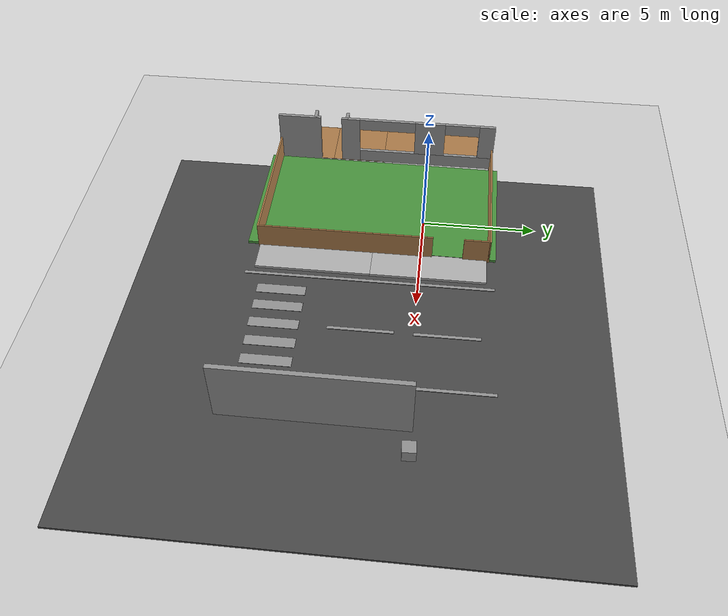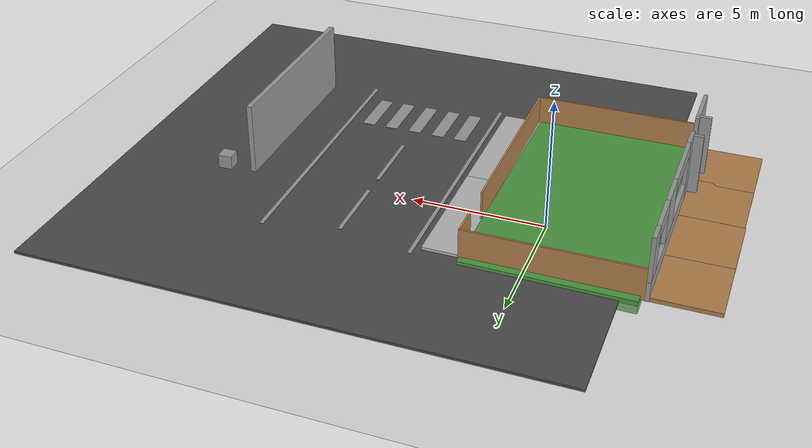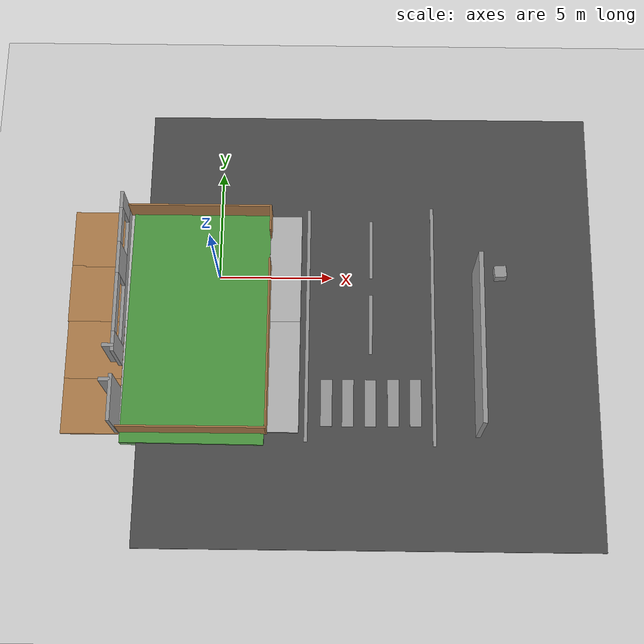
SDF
<sdf version="1.6">
 <world name="default">
  <model name="ground_plane">
   <static>1</static>
   <link name="link">
    <collision name="collision">
     <geometry><plane><normal>0 0 1</normal><size>100 100</size></plane></geometry>
     <surface>
      <contact><collide_bitmask>65535</collide_bitmask></contact>
      <friction><ode><mu>100</mu><mu2>50</mu2></ode></friction>
     </surface>
    </collision>
    <visual name="visual">
     <cast_shadows>0</cast_shadows>
     <geometry><plane><normal>0 0 1</normal><size>100 100</size></plane></geometry>
     <material>
      <script><uri>file://media/materials/scripts/gazebo.material</uri><name>Gazebo/Grey</name></script>
     </material>
    </visual>
   </link>
  </model>
  <model name="grey_wall_1">
   <static>1</static>
   <link name="link">
    <pose>0 0 1.4 0 -0 0</pose>
    <collision name="collision"><geometry><box><size>7.5 0.2 2.8</size></box></geometry></collision>
    <visual name="visual">
     <cast_shadows>0</cast_shadows>
     <geometry><box><size>7.5 0.2 2.8</size></box></geometry>
     <material>
      <script>
       <uri>model://grey_wall/materials/scripts</uri>
       <uri>model://grey_wall/materials/textures</uri>
       <name>vrc/grey_wall</name>
      </script>
     </material>
    </visual>
   </link>
   <pose>11.3606 -3.46174 0 0 -0 1.56876</pose>
  </model>
  <model name="mud_box">
   <static>1</static>
   <link name="link">
    <collision name="collision"><geometry><box><size>8 10 0.2</size></box></geometry></collision>
    <visual name="visual_1">
     <pose>-2 2.5 0 0 -0 0</pose>
     <cast_shadows>0</cast_shadows>
     <geometry><box><size>4 5 0.2</size></box></geometry>
     <material>
      <script>
       <uri>model://mud_box/materials/scripts</uri>
       <uri>model://mud_box/materials/textures</uri>
       <name>vrc/mud</name>
      </script>
     </material>
    </visual>
    <visual name="visual_2">
     <pose>2 2.5 0 0 -0 0</pose>
     <cast_shadows>0</cast_shadows>
     <geometry><box><size>4 5 0.2</size></box></geometry>
     <material>
      <script>
       <uri>model://mud_box/materials/scripts</uri>
       <uri>model://mud_box/materials/textures</uri>
       <name>vrc/mud</name>
      </script>
     </material>
    </visual>
    <visual name="visual_3">
     <pose>2 -2.5 0 0 -0 0</pose>
     <cast_shadows>0</cast_shadows>
     <geometry><box><size>4 5 0.2</size></box></geometry>
     <material>
      <script>
       <uri>model://mud_box/materials/scripts</uri>
       <uri>model://mud_box/materials/textures</uri>
       <name>vrc/mud</name>
      </script>
     </material>
    </visual>
    <visual name="visual_4">
     <pose>-2 -2.5 0 0 -0 0</pose>
     <cast_shadows>0</cast_shadows>
     <geometry><box><size>4 5 0.2</size></box></geometry>
     <material>
      <script>
       <uri>model://mud_box/materials/scripts</uri>
       <uri>model://mud_box/materials/textures</uri>
       <name>vrc/mud</name>
      </script>
     </material>
    </visual>
   </link>
   <pose>-0.378067 -2.09967 0.03638 0 -0 0</pose>
  </model>
  <model name="unit_box_0_clone_22_clone_14">
   <pose>12.4815 0.207746 0.299744 -0.001328 -0.020969 0.063248</pose>
   <link name="link">
    <inertial>
     <mass>1</mass>
     <inertia>
      <ixx>0.166667</ixx>
      <ixy>0</ixy>
      <ixz>0</ixz>
      <iyy>0.166667</iyy>
      <iyz>0</iyz>
      <izz>0.166667</izz>
     </inertia>
    </inertial>
    <collision name="collision">
     <geometry><box><size>0.530101 0.530101 0.530101</size></box></geometry>
    </collision>
    <visual name="visual">
     <geometry><box><size>0.530101 0.530101 0.530101</size></box></geometry>
     <material>
      <script><name>Gazebo/Grey</name><uri>file://media/materials/scripts/gazebo.material</uri></script>
     </material>
    </visual>
   </link>
  </model>
  <model name="world_frame">
   <link name="Wall_100">
    <pose>-15.3271 -4.993 0 0 -0 0</pose>
    <visual name="Wall_100_Visual">
     <pose>0 0 0.625 0 -0 0</pose>
     <geometry><box><size>6.495 0.07 1.25</size></box></geometry>
     <material>
      <script><uri>file://media/materials/scripts/gazebo.material</uri><name>Gazebo/Wood</name></script>
      <ambient>1 1 1 1</ambient>
      <shader type="pixel"/>
      <diffuse>1 1 1 1</diffuse>
      <specular>0.2 0.2 0.2 1</specular>
      <emissive>0 0 0 1</emissive>
     </material>
     <meta><layer>0</layer></meta>
    </visual>
    <collision name="Wall_100_Collision">
     <pose>0 0 0.625 0 -0 0</pose>
     <geometry><box><size>6.495 0.07 1.25</size></box></geometry>
     <surface>
      <friction>
       <ode><mu>1</mu><mu2>1</mu2><fdir1>0 0 0</fdir1><slip1>0</slip1><slip2>0</slip2></ode>
       <torsional>
        <coefficient>1</coefficient>
        <patch_radius>0</patch_radius>
        <surface_radius>0</surface_radius>
        <use_patch_radius>1</use_patch_radius>
        <ode><slip>0</slip></ode>
       </torsional>
      </friction>
      <bounce><restitution_coefficient>0</restitution_coefficient><threshold>1e+06</threshold></bounce>
      <contact>
       <collide_without_contact>0</collide_without_contact>
       <collide_without_contact_bitmask>1</collide_without_contact_bitmask>
       <collide_bitmask>1</collide_bitmask>
       <ode>
        <soft_cfm>0</soft_cfm>
        <soft_erp>0.2</soft_erp>
        <kp>1e+13</kp>
        <kd>1</kd>
        <max_vel>0.01</max_vel>
        <min_depth>0</min_depth>
       </ode>
       <bullet>
        <split_impulse>1</split_impulse>
        <split_impulse_penetration_threshold>-0.01</split_impulse_penetration_threshold>
        <soft_cfm>0</soft_cfm>
        <soft_erp>0.2</soft_erp>
        <kp>1e+13</kp>
        <kd>1</kd>
       </bullet>
      </contact>
     </surface>
    </collision>
   </link>
   <link name="Wall_101">
    <pose>-12.1146 -1.193 0 0 -0 1.5708</pose>
    <visual name="Wall_101_Visual">
     <pose>0 0 0.625 0 -0 0</pose>
     <geometry><box><size>7.6704 0.07 1.25</size></box></geometry>
     <material>
      <script><uri>file://media/materials/scripts/gazebo.material</uri><name>Gazebo/Wood</name></script>
      <ambient>1 1 1 1</ambient>
      <shader type="pixel"/>
      <diffuse>1 1 1 1</diffuse>
      <specular>0.2 0.2 0.2 1</specular>
      <emissive>0 0 0 1</emissive>
     </material>
     <meta><layer>0</layer></meta>
    </visual>
    <collision name="Wall_101_Collision">
     <pose>0 0 0.625 0 -0 0</pose>
     <geometry><box><size>7.6704 0.07 1.25</size></box></geometry>
     <surface>
      <friction>
       <ode><mu>1</mu><mu2>1</mu2><fdir1>0 0 0</fdir1><slip1>0</slip1><slip2>0</slip2></ode>
       <torsional>
        <coefficient>1</coefficient>
        <patch_radius>0</patch_radius>
        <surface_radius>0</surface_radius>
        <use_patch_radius>1</use_patch_radius>
        <ode><slip>0</slip></ode>
       </torsional>
      </friction>
      <bounce><restitution_coefficient>0</restitution_coefficient><threshold>1e+06</threshold></bounce>
      <contact>
       <collide_without_contact>0</collide_without_contact>
       <collide_without_contact_bitmask>1</collide_without_contact_bitmask>
       <collide_bitmask>1</collide_bitmask>
       <ode>
        <soft_cfm>0</soft_cfm>
        <soft_erp>0.2</soft_erp>
        <kp>1e+13</kp>
        <kd>1</kd>
        <max_vel>0.01</max_vel>
        <min_depth>0</min_depth>
       </ode>
       <bullet>
        <split_impulse>1</split_impulse>
        <split_impulse_penetration_threshold>-0.01</split_impulse_penetration_threshold>
        <soft_cfm>0</soft_cfm>
        <soft_erp>0.2</soft_erp>
        <kp>1e+13</kp>
        <kd>1</kd>
       </bullet>
      </contact>
     </surface>
    </collision>
   </link>
   <link name="Wall_131">
    <pose>-18.5396 -4.068 0 0 -0 1.5708</pose>
    <visual name="Wall_131_Visual">
     <pose>0 0 1.25 0 -0 0</pose>
     <geometry><box><size>2 0.15 2.5</size></box></geometry>
     <material>
      <script><uri>file://media/materials/scripts/gazebo.material</uri><name>Gazebo/Grey</name></script>
      <ambient>1 1 1 1</ambient>
      <shader type="pixel"/>
      <diffuse>0.7 0.7 0.7 1</diffuse>
      <specular>0.01 0.01 0.01 1</specular>
      <emissive>0 0 0 1</emissive>
     </material>
     <meta><layer>0</layer></meta>
    </visual>
    <collision name="Wall_131_Collision">
     <pose>0 0 1.25 0 -0 0</pose>
     <geometry><box><size>2 0.15 2.5</size></box></geometry>
     <surface>
      <friction>
       <ode><mu>1</mu><mu2>1</mu2><fdir1>0 0 0</fdir1><slip1>0</slip1><slip2>0</slip2></ode>
       <torsional>
        <coefficient>1</coefficient>
        <patch_radius>0</patch_radius>
        <surface_radius>0</surface_radius>
        <use_patch_radius>1</use_patch_radius>
        <ode><slip>0</slip></ode>
       </torsional>
      </friction>
      <bounce><restitution_coefficient>0</restitution_coefficient><threshold>1e+06</threshold></bounce>
      <contact>
       <collide_without_contact>0</collide_without_contact>
       <collide_without_contact_bitmask>1</collide_without_contact_bitmask>
       <collide_bitmask>1</collide_bitmask>
       <ode>
        <soft_cfm>0</soft_cfm>
        <soft_erp>0.2</soft_erp>
        <kp>1e+13</kp>
        <kd>1</kd>
        <max_vel>0.01</max_vel>
        <min_depth>0</min_depth>
       </ode>
       <bullet>
        <split_impulse>1</split_impulse>
        <split_impulse_penetration_threshold>-0.01</split_impulse_penetration_threshold>
        <soft_cfm>0</soft_cfm>
        <soft_erp>0.2</soft_erp>
        <kp>1e+13</kp>
        <kd>1</kd>
       </bullet>
      </contact>
     </surface>
    </collision>
   </link>
   <link name="Wall_136">
    <pose>-18.5517 1.54493 0 0 -0 1.5708</pose>
    <visual name="Wall_136_Visual_0">
     <pose>-3.1871 0 1.25 0 -0 0</pose>
     <geometry><box><size>0.875792 0.15 2.5</size></box></geometry>
     <material>
      <script><uri>file://media/materials/scripts/gazebo.material</uri><name>Gazebo/Grey</name></script>
      <ambient>1 1 1 1</ambient>
      <shader type="pixel"/>
      <diffuse>0.7 0.7 0.7 1</diffuse>
      <specular>0.01 0.01 0.01 1</specular>
      <emissive>0 0 0 1</emissive>
     </material>
     <meta><layer>0</layer></meta>
    </visual>
    <visual name="Wall_136_Visual_1">
     <pose>0.437896 0 0.375 0 -0 0</pose>
     <geometry><box><size>6.37421 0.15 0.75</size></box></geometry>
     <material>
      <script><uri>file://media/materials/scripts/gazebo.material</uri><name>Gazebo/Grey</name></script>
      <ambient>1 1 1 1</ambient>
      <shader type="pixel"/>
      <diffuse>0.7 0.7 0.7 1</diffuse>
      <specular>0.01 0.01 0.01 1</specular>
      <emissive>0 0 0 1</emissive>
     </material>
     <meta><layer>0</layer></meta>
    </visual>
    <visual name="Wall_136_Visual_2">
     <pose>0.578795 0 1.625 0 -0 0</pose>
     <geometry><box><size>1.40688 0.15 1.75</size></box></geometry>
     <material>
      <script><uri>file://media/materials/scripts/gazebo.material</uri><name>Gazebo/Grey</name></script>
      <ambient>1 1 1 1</ambient>
      <shader type="pixel"/>
      <diffuse>0.7 0.7 0.7 1</diffuse>
      <specular>0.01 0.01 0.01 1</specular>
      <emissive>0 0 0 1</emissive>
     </material>
     <meta><layer>0</layer></meta>
    </visual>
    <visual name="Wall_136_Visual_3">
     <pose>3.25362 0 1.625 0 -0 0</pose>
     <geometry><box><size>0.742767 0.15 1.75</size></box></geometry>
     <material>
      <script><uri>file://media/materials/scripts/gazebo.material</uri><name>Gazebo/Grey</name></script>
      <ambient>1 1 1 1</ambient>
      <shader type="pixel"/>
      <diffuse>0.7 0.7 0.7 1</diffuse>
      <specular>0.01 0.01 0.01 1</specular>
      <emissive>0 0 0 1</emissive>
     </material>
     <meta><layer>0</layer></meta>
    </visual>
    <visual name="Wall_136_Visual_4">
     <pose>-1.43693 0 2.225 0 -0 0</pose>
     <geometry><box><size>2.62457 0.15 0.55</size></box></geometry>
     <material>
      <script><uri>file://media/materials/scripts/gazebo.material</uri><name>Gazebo/Grey</name></script>
      <ambient>1 1 1 1</ambient>
      <shader type="pixel"/>
      <diffuse>0.7 0.7 0.7 1</diffuse>
      <specular>0.01 0.01 0.01 1</specular>
      <emissive>0 0 0 1</emissive>
     </material>
     <meta><layer>0</layer></meta>
    </visual>
    <visual name="Wall_136_Visual_5">
     <pose>2.08223 0 2.225 0 -0 0</pose>
     <geometry><box><size>1.6 0.15 0.55</size></box></geometry>
     <material>
      <script><uri>file://media/materials/scripts/gazebo.material</uri><name>Gazebo/Grey</name></script>
      <ambient>1 1 1 1</ambient>
      <shader type="pixel"/>
      <diffuse>0.7 0.7 0.7 1</diffuse>
      <specular>0.01 0.01 0.01 1</specular>
      <emissive>0 0 0 1</emissive>
     </material>
     <meta><layer>0</layer></meta>
    </visual>
    <collision name="Wall_136_Collision_0">
     <pose>-3.1871 0 1.25 0 -0 0</pose>
     <geometry><box><size>0.875792 0.15 2.5</size></box></geometry>
     <surface>
      <friction>
       <ode><mu>1</mu><mu2>1</mu2><fdir1>0 0 0</fdir1><slip1>0</slip1><slip2>0</slip2></ode>
       <torsional>
        <coefficient>1</coefficient>
        <patch_radius>0</patch_radius>
        <surface_radius>0</surface_radius>
        <use_patch_radius>1</use_patch_radius>
        <ode><slip>0</slip></ode>
       </torsional>
      </friction>
      <bounce><restitution_coefficient>0</restitution_coefficient><threshold>1e+06</threshold></bounce>
      <contact>
       <collide_without_contact>0</collide_without_contact>
       <collide_without_contact_bitmask>1</collide_without_contact_bitmask>
       <collide_bitmask>1</collide_bitmask>
       <ode>
        <soft_cfm>0</soft_cfm>
        <soft_erp>0.2</soft_erp>
        <kp>1e+13</kp>
        <kd>1</kd>
        <max_vel>0.01</max_vel>
        <min_depth>0</min_depth>
       </ode>
       <bullet>
        <split_impulse>1</split_impulse>
        <split_impulse_penetration_threshold>-0.01</split_impulse_penetration_threshold>
        <soft_cfm>0</soft_cfm>
        <soft_erp>0.2</soft_erp>
        <kp>1e+13</kp>
        <kd>1</kd>
       </bullet>
      </contact>
     </surface>
    </collision>
    <collision name="Wall_136_Collision_1">
     <pose>0.437896 0 0.375 0 -0 0</pose>
     <geometry><box><size>6.37421 0.15 0.75</size></box></geometry>
     <surface>
      <friction>
       <ode><mu>1</mu><mu2>1</mu2><fdir1>0 0 0</fdir1><slip1>0</slip1><slip2>0</slip2></ode>
       <torsional>
        <coefficient>1</coefficient>
        <patch_radius>0</patch_radius>
        <surface_radius>0</surface_radius>
        <use_patch_radius>1</use_patch_radius>
        <ode><slip>0</slip></ode>
       </torsional>
      </friction>
      <bounce><restitution_coefficient>0</restitution_coefficient><threshold>1e+06</threshold></bounce>
      <contact>
       <collide_without_contact>0</collide_without_contact>
       <collide_without_contact_bitmask>1</collide_without_contact_bitmask>
       <collide_bitmask>1</collide_bitmask>
       <ode>
        <soft_cfm>0</soft_cfm>
        <soft_erp>0.2</soft_erp>
        <kp>1e+13</kp>
        <kd>1</kd>
        <max_vel>0.01</max_vel>
        <min_depth>0</min_depth>
       </ode>
       <bullet>
        <split_impulse>1</split_impulse>
        <split_impulse_penetration_threshold>-0.01</split_impulse_penetration_threshold>
        <soft_cfm>0</soft_cfm>
        <soft_erp>0.2</soft_erp>
        <kp>1e+13</kp>
        <kd>1</kd>
       </bullet>
      </contact>
     </surface>
    </collision>
    <collision name="Wall_136_Collision_2">
     <pose>0.578795 0 1.625 0 -0 0</pose>
     <geometry><box><size>1.40688 0.15 1.75</size></box></geometry>
     <surface>
      <friction>
       <ode><mu>1</mu><mu2>1</mu2><fdir1>0 0 0</fdir1><slip1>0</slip1><slip2>0</slip2></ode>
       <torsional>
        <coefficient>1</coefficient>
        <patch_radius>0</patch_radius>
        <surface_radius>0</surface_radius>
        <use_patch_radius>1</use_patch_radius>
        <ode><slip>0</slip></ode>
       </torsional>
      </friction>
      <bounce><restitution_coefficient>0</restitution_coefficient><threshold>1e+06</threshold></bounce>
      <contact>
       <collide_without_contact>0</collide_without_contact>
       <collide_without_contact_bitmask>1</collide_without_contact_bitmask>
       <collide_bitmask>1</collide_bitmask>
       <ode>
        <soft_cfm>0</soft_cfm>
        <soft_erp>0.2</soft_erp>
        <kp>1e+13</kp>
        <kd>1</kd>
        <max_vel>0.01</max_vel>
        <min_depth>0</min_depth>
       </ode>
       <bullet>
        <split_impulse>1</split_impulse>
        <split_impulse_penetration_threshold>-0.01</split_impulse_penetration_threshold>
        <soft_cfm>0</soft_cfm>
        <soft_erp>0.2</soft_erp>
        <kp>1e+13</kp>
        <kd>1</kd>
       </bullet>
      </contact>
     </surface>
    </collision>
    <collision name="Wall_136_Collision_4">
     <pose>-1.43693 0 2.225 0 -0 0</pose>
     <geometry><box><size>2.62457 0.15 0.55</size></box></geometry>
     <surface>
      <friction>
       <ode><mu>1</mu><mu2>1</mu2><fdir1>0 0 0</fdir1><slip1>0</slip1><slip2>0</slip2></ode>
       <torsional>
        <coefficient>1</coefficient>
        <patch_radius>0</patch_radius>
        <surface_radius>0</surface_radius>
        <use_patch_radius>1</use_patch_radius>
        <ode><slip>0</slip></ode>
       </torsional>
      </friction>
      <bounce><restitution_coefficient>0</restitution_coefficient><threshold>1e+06</threshold></bounce>
      <contact>
       <collide_without_contact>0</collide_without_contact>
       <collide_without_contact_bitmask>1</collide_without_contact_bitmask>
       <collide_bitmask>1</collide_bitmask>
       <ode>
        <soft_cfm>0</soft_cfm>
        <soft_erp>0.2</soft_erp>
        <kp>1e+13</kp>
        <kd>1</kd>
        <max_vel>0.01</max_vel>
        <min_depth>0</min_depth>
       </ode>
       <bullet>
        <split_impulse>1</split_impulse>
        <split_impulse_penetration_threshold>-0.01</split_impulse_penetration_threshold>
        <soft_cfm>0</soft_cfm>
        <soft_erp>0.2</soft_erp>
        <kp>1e+13</kp>
        <kd>1</kd>
       </bullet>
      </contact>
     </surface>
    </collision>
    <collision name="Wall_136_Collision_3">
     <pose>3.25362 0 1.625 0 -0 0</pose>
     <geometry><box><size>0.742767 0.15 1.75</size></box></geometry>
     <surface>
      <friction>
       <ode><mu>1</mu><mu2>1</mu2><fdir1>0 0 0</fdir1><slip1>0</slip1><slip2>0</slip2></ode>
       <torsional>
        <coefficient>1</coefficient>
        <patch_radius>0</patch_radius>
        <surface_radius>0</surface_radius>
        <use_patch_radius>1</use_patch_radius>
        <ode><slip>0</slip></ode>
       </torsional>
      </friction>
      <bounce><restitution_coefficient>0</restitution_coefficient><threshold>1e+06</threshold></bounce>
      <contact>
       <collide_without_contact>0</collide_without_contact>
       <collide_without_contact_bitmask>1</collide_without_contact_bitmask>
       <collide_bitmask>1</collide_bitmask>
       <ode>
        <soft_cfm>0</soft_cfm>
        <soft_erp>0.2</soft_erp>
        <kp>1e+13</kp>
        <kd>1</kd>
        <max_vel>0.01</max_vel>
        <min_depth>0</min_depth>
       </ode>
       <bullet>
        <split_impulse>1</split_impulse>
        <split_impulse_penetration_threshold>-0.01</split_impulse_penetration_threshold>
        <soft_cfm>0</soft_cfm>
        <soft_erp>0.2</soft_erp>
        <kp>1e+13</kp>
        <kd>1</kd>
       </bullet>
      </contact>
     </surface>
    </collision>
    <collision name="Wall_136_Collision_5">
     <pose>2.08223 0 2.225 0 -0 0</pose>
     <geometry><box><size>1.6 0.15 0.55</size></box></geometry>
     <surface>
      <friction>
       <ode><mu>1</mu><mu2>1</mu2><fdir1>0 0 0</fdir1><slip1>0</slip1><slip2>0</slip2></ode>
       <torsional>
        <coefficient>1</coefficient>
        <patch_radius>0</patch_radius>
        <surface_radius>0</surface_radius>
        <use_patch_radius>1</use_patch_radius>
        <ode><slip>0</slip></ode>
       </torsional>
      </friction>
      <bounce><restitution_coefficient>0</restitution_coefficient><threshold>1e+06</threshold></bounce>
      <contact>
       <collide_without_contact>0</collide_without_contact>
       <collide_without_contact_bitmask>1</collide_without_contact_bitmask>
       <collide_bitmask>1</collide_bitmask>
       <ode>
        <soft_cfm>0</soft_cfm>
        <soft_erp>0.2</soft_erp>
        <kp>1e+13</kp>
        <kd>1</kd>
        <max_vel>0.01</max_vel>
        <min_depth>0</min_depth>
       </ode>
       <bullet>
        <split_impulse>1</split_impulse>
        <split_impulse_penetration_threshold>-0.01</split_impulse_penetration_threshold>
        <soft_cfm>0</soft_cfm>
        <soft_erp>0.2</soft_erp>
        <kp>1e+13</kp>
        <kd>1</kd>
       </bullet>
      </contact>
     </surface>
    </collision>
   </link>
   <link name="Wall_159">
    <pose>-18.7934 -3.30493 0 0 -0 3.14159</pose>
    <visual name="Wall_159_Visual">
     <pose>0 0 1.25 0 -0 0</pose>
     <geometry><box><size>0.5 0.15 2.5</size></box></geometry>
     <material>
      <script><uri>file://media/materials/scripts/gazebo.material</uri><name>Gazebo/Grey</name></script>
      <ambient>1 1 1 1</ambient>
      <shader type="pixel"/>
      <diffuse>0.7 0.7 0.7 1</diffuse>
      <specular>0.01 0.01 0.01 1</specular>
      <emissive>0 0 0 1</emissive>
     </material>
     <meta><layer>0</layer></meta>
    </visual>
    <collision name="Wall_159_Collision">
     <pose>0 0 1.25 0 -0 0</pose>
     <geometry><box><size>0.5 0.15 2.5</size></box></geometry>
     <surface>
      <friction>
       <ode><mu>1</mu><mu2>1</mu2><fdir1>0 0 0</fdir1><slip1>0</slip1><slip2>0</slip2></ode>
       <torsional>
        <coefficient>1</coefficient>
        <patch_radius>0</patch_radius>
        <surface_radius>0</surface_radius>
        <use_patch_radius>1</use_patch_radius>
        <ode><slip>0</slip></ode>
       </torsional>
      </friction>
      <bounce><restitution_coefficient>0</restitution_coefficient><threshold>1e+06</threshold></bounce>
      <contact>
       <collide_without_contact>0</collide_without_contact>
       <collide_without_contact_bitmask>1</collide_without_contact_bitmask>
       <collide_bitmask>1</collide_bitmask>
       <ode>
        <soft_cfm>0</soft_cfm>
        <soft_erp>0.2</soft_erp>
        <kp>1e+13</kp>
        <kd>1</kd>
        <max_vel>0.01</max_vel>
        <min_depth>0</min_depth>
       </ode>
       <bullet>
        <split_impulse>1</split_impulse>
        <split_impulse_penetration_threshold>-0.01</split_impulse_penetration_threshold>
        <soft_cfm>0</soft_cfm>
        <soft_erp>0.2</soft_erp>
        <kp>1e+13</kp>
        <kd>1</kd>
       </bullet>
      </contact>
     </surface>
    </collision>
   </link>
   <link name="Wall_176">
    <pose>-18.7419 -1.81759 0 0 -0 3.14159</pose>
    <visual name="Wall_176_Visual">
     <pose>0 0 1.25 0 -0 0</pose>
     <geometry><box><size>0.5 0.15 2.5</size></box></geometry>
     <material>
      <script><uri>file://media/materials/scripts/gazebo.material</uri><name>Gazebo/Grey</name></script>
      <ambient>1 1 1 1</ambient>
      <shader type="pixel"/>
      <diffuse>0.7 0.7 0.7 1</diffuse>
      <specular>0.01 0.01 0.01 1</specular>
      <emissive>0 0 0 1</emissive>
     </material>
     <meta><layer>0</layer></meta>
    </visual>
    <collision name="Wall_176_Collision">
     <pose>0 0 1.25 0 -0 0</pose>
     <geometry><box><size>0.5 0.15 2.5</size></box></geometry>
     <surface>
      <friction>
       <ode><mu>1</mu><mu2>1</mu2><fdir1>0 0 0</fdir1><slip1>0</slip1><slip2>0</slip2></ode>
       <torsional>
        <coefficient>1</coefficient>
        <patch_radius>0</patch_radius>
        <surface_radius>0</surface_radius>
        <use_patch_radius>1</use_patch_radius>
        <ode><slip>0</slip></ode>
       </torsional>
      </friction>
      <bounce><restitution_coefficient>0</restitution_coefficient><threshold>1e+06</threshold></bounce>
      <contact>
       <collide_without_contact>0</collide_without_contact>
       <collide_without_contact_bitmask>1</collide_without_contact_bitmask>
       <collide_bitmask>1</collide_bitmask>
       <ode>
        <soft_cfm>0</soft_cfm>
        <soft_erp>0.2</soft_erp>
        <kp>1e+13</kp>
        <kd>1</kd>
        <max_vel>0.01</max_vel>
        <min_depth>0</min_depth>
       </ode>
       <bullet>
        <split_impulse>1</split_impulse>
        <split_impulse_penetration_threshold>-0.01</split_impulse_penetration_threshold>
        <soft_cfm>0</soft_cfm>
        <soft_erp>0.2</soft_erp>
        <kp>1e+13</kp>
        <kd>1</kd>
       </bullet>
      </contact>
     </surface>
    </collision>
   </link>
   <link name="Wall_215">
    <pose>-9.55135 -3.61132 0 0 -0 1.5708</pose>
    <inertial>
     <mass>1</mass>
     <inertia><ixx>1</ixx><ixy>0</ixy><ixz>0</ixz><iyy>1</iyy><iyz>0</iyz><izz>1</izz></inertia>
    </inertial>
    <visual name="Wall_215_Visual">
     <pose>0 0 0.019 0 -0 0</pose>
     <geometry><box><size>2.1 0.5 0.038</size></box></geometry>
     <material>
      <script><uri>file://media/materials/scripts/gazebo.material</uri><name>Gazebo/Grey</name></script>
      <ambient>1 1 1 1</ambient>
      <shader type="pixel"><normal_map>__default__</normal_map></shader>
      <diffuse>0.7 0.7 0.7 1</diffuse>
      <specular>0.01 0.01 0.01 1</specular>
      <emissive>0 0 0 1</emissive>
     </material>
     <meta><layer>0</layer></meta>
    </visual>
   </link>
   <link name="Wall_217">
    <pose>-7.64015 -3.614 0 0 0 -1.5708</pose>
    <inertial>
     <mass>1</mass>
     <inertia><ixx>1</ixx><ixy>0</ixy><ixz>0</ixz><iyy>1</iyy><iyz>0</iyz><izz>1</izz></inertia>
    </inertial>
    <visual name="Wall_217_Visual">
     <pose>0 0 0.019 0 -0 0</pose>
     <geometry><box><size>2.1 0.5 0.038</size></box></geometry>
     <material>
      <script><uri>file://media/materials/scripts/gazebo.material</uri><name>Gazebo/Grey</name></script>
      <ambient>1 1 1 1</ambient>
      <shader type="pixel"><normal_map>__default__</normal_map></shader>
      <diffuse>0.7 0.7 0.7 1</diffuse>
      <specular>0.01 0.01 0.01 1</specular>
      <emissive>0 0 0 1</emissive>
     </material>
     <meta><layer>0</layer></meta>
    </visual>
   </link>
   <link name="Wall_219">
    <pose>-8.62134 -3.61132 0 0 0 -1.5708</pose>
    <inertial>
     <mass>1</mass>
     <inertia><ixx>1</ixx><ixy>0</ixy><ixz>0</ixz><iyy>1</iyy><iyz>0</iyz><izz>1</izz></inertia>
    </inertial>
    <visual name="Wall_219_Visual">
     <pose>0 0 0.019 0 -0 0</pose>
     <geometry><box><size>2.1 0.5 0.038</size></box></geometry>
     <material>
      <script><uri>file://media/materials/scripts/gazebo.material</uri><name>Gazebo/Grey</name></script>
      <ambient>1 1 1 1</ambient>
      <shader type="pixel"><normal_map>__default__</normal_map></shader>
      <diffuse>0.7 0.7 0.7 1</diffuse>
      <specular>0.01 0.01 0.01 1</specular>
      <emissive>0 0 0 1</emissive>
     </material>
     <meta><layer>0</layer></meta>
    </visual>
   </link>
   <link name="Wall_221">
    <pose>-6.65002 -3.59362 0 0 0 -1.5708</pose>
    <inertial>
     <mass>1</mass>
     <inertia><ixx>1</ixx><ixy>0</ixy><ixz>0</ixz><iyy>1</iyy><iyz>0</iyz><izz>1</izz></inertia>
    </inertial>
    <visual name="Wall_221_Visual">
     <pose>0 0 0.019 0 -0 0</pose>
     <geometry><box><size>2.1 0.5 0.038</size></box></geometry>
     <material>
      <script><uri>file://media/materials/scripts/gazebo.material</uri><name>Gazebo/Grey</name></script>
      <ambient>1 1 1 1</ambient>
      <shader type="pixel"><normal_map>__default__</normal_map></shader>
      <diffuse>0.7 0.7 0.7 1</diffuse>
      <specular>0.01 0.01 0.01 1</specular>
      <emissive>0 0 0 1</emissive>
     </material>
     <meta><layer>0</layer></meta>
    </visual>
   </link>
   <link name="Wall_223">
    <pose>-5.68214 -3.58162 0 0 0 -1.5708</pose>
    <inertial>
     <mass>1</mass>
     <inertia><ixx>1</ixx><ixy>0</ixy><ixz>0</ixz><iyy>1</iyy><iyz>0</iyz><izz>1</izz></inertia>
    </inertial>
    <visual name="Wall_223_Visual">
     <pose>0 0 0.019 0 -0 0</pose>
     <geometry><box><size>2.1 0.5 0.038</size></box></geometry>
     <material>
      <script><uri>file://media/materials/scripts/gazebo.material</uri><name>Gazebo/Grey</name></script>
      <ambient>1 1 1 1</ambient>
      <shader type="pixel"><normal_map>__default__</normal_map></shader>
      <diffuse>0.7 0.7 0.7 1</diffuse>
      <specular>0.01 0.01 0.01 1</specular>
      <emissive>0 0 0 1</emissive>
     </material>
     <meta><layer>0</layer></meta>
    </visual>
   </link>
   <link name="Wall_227">
    <pose>-19.7561 3.83536 0 0 0 -1.5708</pose>
    <visual name="Wall_227_Visual">
     <pose>0 0 0.0775 0 -0 0</pose>
     <geometry><box><size>2.625 2.5 0.155</size></box></geometry>
     <material>
      <script><uri>file://media/materials/scripts/gazebo.material</uri><name>Gazebo/Wood</name></script>
      <ambient>1 1 1 1</ambient>
      <shader type="pixel"/>
      <diffuse>1 1 1 1</diffuse>
      <specular>0.2 0.2 0.2 1</specular>
      <emissive>0 0 0 1</emissive>
     </material>
     <meta><layer>0</layer></meta>
    </visual>
    <collision name="Wall_227_Collision">
     <pose>0 0 0.0775 0 -0 0</pose>
     <geometry><box><size>2.625 2.5 0.155</size></box></geometry>
     <surface>
      <friction>
       <ode><mu>1</mu><mu2>1</mu2><fdir1>0 0 0</fdir1><slip1>0</slip1><slip2>0</slip2></ode>
       <torsional>
        <coefficient>1</coefficient>
        <patch_radius>0</patch_radius>
        <surface_radius>0</surface_radius>
        <use_patch_radius>1</use_patch_radius>
        <ode><slip>0</slip></ode>
       </torsional>
      </friction>
      <bounce><restitution_coefficient>0</restitution_coefficient><threshold>1e+06</threshold></bounce>
      <contact>
       <collide_without_contact>0</collide_without_contact>
       <collide_without_contact_bitmask>1</collide_without_contact_bitmask>
       <collide_bitmask>1</collide_bitmask>
       <ode>
        <soft_cfm>0</soft_cfm>
        <soft_erp>0.2</soft_erp>
        <kp>1e+13</kp>
        <kd>1</kd>
        <max_vel>0.01</max_vel>
        <min_depth>0</min_depth>
       </ode>
       <bullet>
        <split_impulse>1</split_impulse>
        <split_impulse_penetration_threshold>-0.01</split_impulse_penetration_threshold>
        <soft_cfm>0</soft_cfm>
        <soft_erp>0.2</soft_erp>
        <kp>1e+13</kp>
        <kd>1</kd>
       </bullet>
      </contact>
     </surface>
    </collision>
   </link>
   <link name="Wall_231">
    <pose>-19.7567 1.26088 0 0 0 -1.5708</pose>
    <visual name="Wall_231_Visual">
     <pose>0 0 0.0775 0 -0 0</pose>
     <geometry><box><size>2.625 2.5 0.155</size></box></geometry>
     <material>
      <script><uri>file://media/materials/scripts/gazebo.material</uri><name>Gazebo/Wood</name></script>
      <ambient>1 1 1 1</ambient>
      <shader type="pixel"/>
      <diffuse>1 1 1 1</diffuse>
      <specular>0.2 0.2 0.2 1</specular>
      <emissive>0 0 0 1</emissive>
     </material>
     <meta><layer>0</layer></meta>
    </visual>
    <collision name="Wall_231_Collision">
     <pose>0 0 0.0775 0 -0 0</pose>
     <geometry><box><size>2.625 2.5 0.155</size></box></geometry>
     <surface>
      <friction>
       <ode><mu>1</mu><mu2>1</mu2><fdir1>0 0 0</fdir1><slip1>0</slip1><slip2>0</slip2></ode>
       <torsional>
        <coefficient>1</coefficient>
        <patch_radius>0</patch_radius>
        <surface_radius>0</surface_radius>
        <use_patch_radius>1</use_patch_radius>
        <ode><slip>0</slip></ode>
       </torsional>
      </friction>
      <bounce><restitution_coefficient>0</restitution_coefficient><threshold>1e+06</threshold></bounce>
      <contact>
       <collide_without_contact>0</collide_without_contact>
       <collide_without_contact_bitmask>1</collide_without_contact_bitmask>
       <collide_bitmask>1</collide_bitmask>
       <ode>
        <soft_cfm>0</soft_cfm>
        <soft_erp>0.2</soft_erp>
        <kp>1e+13</kp>
        <kd>1</kd>
        <max_vel>0.01</max_vel>
        <min_depth>0</min_depth>
       </ode>
       <bullet>
        <split_impulse>1</split_impulse>
        <split_impulse_penetration_threshold>-0.01</split_impulse_penetration_threshold>
        <soft_cfm>0</soft_cfm>
        <soft_erp>0.2</soft_erp>
        <kp>1e+13</kp>
        <kd>1</kd>
       </bullet>
      </contact>
     </surface>
    </collision>
   </link>
   <link name="Wall_237">
    <pose>-19.7231 -1.35038 0 0 0 -1.5708</pose>
    <visual name="Wall_237_Visual">
     <pose>0 0 0.0775 0 -0 0</pose>
     <geometry><box><size>2.625 2.5 0.155</size></box></geometry>
     <material>
      <script><uri>file://media/materials/scripts/gazebo.material</uri><name>Gazebo/Wood</name></script>
      <ambient>1 1 1 1</ambient>
      <shader type="pixel"/>
      <diffuse>1 1 1 1</diffuse>
      <specular>0.2 0.2 0.2 1</specular>
      <emissive>0 0 0 1</emissive>
     </material>
     <meta><layer>0</layer></meta>
    </visual>
    <collision name="Wall_237_Collision">
     <pose>0 0 0.0775 0 -0 0</pose>
     <geometry><box><size>2.625 2.5 0.155</size></box></geometry>
     <surface>
      <friction>
       <ode><mu>1</mu><mu2>1</mu2><fdir1>0 0 0</fdir1><slip1>0</slip1><slip2>0</slip2></ode>
       <torsional>
        <coefficient>1</coefficient>
        <patch_radius>0</patch_radius>
        <surface_radius>0</surface_radius>
        <use_patch_radius>1</use_patch_radius>
        <ode><slip>0</slip></ode>
       </torsional>
      </friction>
      <bounce><restitution_coefficient>0</restitution_coefficient><threshold>1e+06</threshold></bounce>
      <contact>
       <collide_without_contact>0</collide_without_contact>
       <collide_without_contact_bitmask>1</collide_without_contact_bitmask>
       <collide_bitmask>1</collide_bitmask>
       <ode>
        <soft_cfm>0</soft_cfm>
        <soft_erp>0.2</soft_erp>
        <kp>1e+13</kp>
        <kd>1</kd>
        <max_vel>0.01</max_vel>
        <min_depth>0</min_depth>
       </ode>
       <bullet>
        <split_impulse>1</split_impulse>
        <split_impulse_penetration_threshold>-0.01</split_impulse_penetration_threshold>
        <soft_cfm>0</soft_cfm>
        <soft_erp>0.2</soft_erp>
        <kp>1e+13</kp>
        <kd>1</kd>
       </bullet>
      </contact>
     </surface>
    </collision>
   </link>
   <link name="Wall_239">
    <pose>-19.7211 -3.79343 0 0 0 -1.5708</pose>
    <visual name="Wall_239_Visual">
     <pose>0 0 0.0775 0 -0 0</pose>
     <geometry><box><size>2.625 2.5 0.155</size></box></geometry>
     <material>
      <script><uri>file://media/materials/scripts/gazebo.material</uri><name>Gazebo/Wood</name></script>
      <ambient>1 1 1 1</ambient>
      <shader type="pixel"/>
      <diffuse>1 1 1 1</diffuse>
      <specular>0.2 0.2 0.2 1</specular>
      <emissive>0 0 0 1</emissive>
     </material>
     <meta><layer>0</layer></meta>
    </visual>
    <collision name="Wall_239_Collision">
     <pose>0 0 0.0775 0 -0 0</pose>
     <geometry><box><size>2.625 2.5 0.155</size></box></geometry>
     <surface>
      <friction>
       <ode><mu>1</mu><mu2>1</mu2><fdir1>0 0 0</fdir1><slip1>0</slip1><slip2>0</slip2></ode>
       <torsional>
        <coefficient>1</coefficient>
        <patch_radius>0</patch_radius>
        <surface_radius>0</surface_radius>
        <use_patch_radius>1</use_patch_radius>
        <ode><slip>0</slip></ode>
       </torsional>
      </friction>
      <bounce><restitution_coefficient>0</restitution_coefficient><threshold>1e+06</threshold></bounce>
      <contact>
       <collide_without_contact>0</collide_without_contact>
       <collide_without_contact_bitmask>1</collide_without_contact_bitmask>
       <collide_bitmask>1</collide_bitmask>
       <ode>
        <soft_cfm>0</soft_cfm>
        <soft_erp>0.2</soft_erp>
        <kp>1e+13</kp>
        <kd>1</kd>
        <max_vel>0.01</max_vel>
        <min_depth>0</min_depth>
       </ode>
       <bullet>
        <split_impulse>1</split_impulse>
        <split_impulse_penetration_threshold>-0.01</split_impulse_penetration_threshold>
        <soft_cfm>0</soft_cfm>
        <soft_erp>0.2</soft_erp>
        <kp>1e+13</kp>
        <kd>1</kd>
       </bullet>
      </contact>
     </surface>
    </collision>
   </link>
   <link name="Wall_90">
    <pose>-15.2896 5.107 0 0 -0 0</pose>
    <visual name="Wall_90_Visual">
     <pose>0 0 0.625 0 -0 0</pose>
     <geometry><box><size>6.42 0.07 1.25</size></box></geometry>
     <material>
      <script><uri>file://media/materials/scripts/gazebo.material</uri><name>Gazebo/Wood</name></script>
      <ambient>1 1 1 1</ambient>
      <shader type="pixel"/>
      <diffuse>1 1 1 1</diffuse>
      <specular>0.2 0.2 0.2 1</specular>
      <emissive>0 0 0 1</emissive>
     </material>
     <meta><layer>0</layer></meta>
    </visual>
    <collision name="Wall_90_Collision">
     <pose>0 0 0.625 0 -0 0</pose>
     <geometry><box><size>6.42 0.07 1.25</size></box></geometry>
     <surface>
      <friction>
       <ode><mu>1</mu><mu2>1</mu2><fdir1>0 0 0</fdir1><slip1>0</slip1><slip2>0</slip2></ode>
       <torsional>
        <coefficient>1</coefficient>
        <patch_radius>0</patch_radius>
        <surface_radius>0</surface_radius>
        <use_patch_radius>1</use_patch_radius>
        <ode><slip>0</slip></ode>
       </torsional>
      </friction>
      <bounce><restitution_coefficient>0</restitution_coefficient><threshold>1e+06</threshold></bounce>
      <contact>
       <collide_without_contact>0</collide_without_contact>
       <collide_without_contact_bitmask>1</collide_without_contact_bitmask>
       <collide_bitmask>1</collide_bitmask>
       <ode>
        <soft_cfm>0</soft_cfm>
        <soft_erp>0.2</soft_erp>
        <kp>1e+13</kp>
        <kd>1</kd>
        <max_vel>0.01</max_vel>
        <min_depth>0</min_depth>
       </ode>
       <bullet>
        <split_impulse>1</split_impulse>
        <split_impulse_penetration_threshold>-0.01</split_impulse_penetration_threshold>
        <soft_cfm>0</soft_cfm>
        <soft_erp>0.2</soft_erp>
        <kp>1e+13</kp>
        <kd>1</kd>
       </bullet>
      </contact>
     </surface>
    </collision>
   </link>
   <link name="Wall_91">
    <pose>-12.1146 4.557 0 0 0 -1.5708</pose>
    <visual name="Wall_91_Visual">
     <pose>0 0 0.625 0 -0 0</pose>
     <geometry><box><size>1.16959 0.07 1.25</size></box></geometry>
     <material>
      <script><uri>file://media/materials/scripts/gazebo.material</uri><name>Gazebo/Wood</name></script>
      <ambient>1 1 1 1</ambient>
      <shader type="pixel"/>
      <diffuse>1 1 1 1</diffuse>
      <specular>0.2 0.2 0.2 1</specular>
      <emissive>0 0 0 1</emissive>
     </material>
     <meta><layer>0</layer></meta>
    </visual>
    <collision name="Wall_91_Collision">
     <pose>0 0 0.625 0 -0 0</pose>
     <geometry><box><size>1.16959 0.07 1.25</size></box></geometry>
     <surface>
      <friction>
       <ode><mu>1</mu><mu2>1</mu2><fdir1>0 0 0</fdir1><slip1>0</slip1><slip2>0</slip2></ode>
       <torsional>
        <coefficient>1</coefficient>
        <patch_radius>0</patch_radius>
        <surface_radius>0</surface_radius>
        <use_patch_radius>1</use_patch_radius>
        <ode><slip>0</slip></ode>
       </torsional>
      </friction>
      <bounce><restitution_coefficient>0</restitution_coefficient><threshold>1e+06</threshold></bounce>
      <contact>
       <collide_without_contact>0</collide_without_contact>
       <collide_without_contact_bitmask>1</collide_without_contact_bitmask>
       <collide_bitmask>1</collide_bitmask>
       <ode>
        <soft_cfm>0</soft_cfm>
        <soft_erp>0.2</soft_erp>
        <kp>1e+13</kp>
        <kd>1</kd>
        <max_vel>0.01</max_vel>
        <min_depth>0</min_depth>
       </ode>
       <bullet>
        <split_impulse>1</split_impulse>
        <split_impulse_penetration_threshold>-0.01</split_impulse_penetration_threshold>
        <soft_cfm>0</soft_cfm>
        <soft_erp>0.2</soft_erp>
        <kp>1e+13</kp>
        <kd>1</kd>
       </bullet>
      </contact>
     </surface>
    </collision>
   </link>
   <static>1</static>
   <pose>14.3624 -2.13506 0 0 -0 0</pose>
  </model>
  <model name="road_marks">
   <link name="Wall_63">
    <pose>2.76474 -0.160071 0 0 0 -1.5708</pose>
    <inertial>
     <inertia><ixx>0</ixx><ixy>0</ixy><ixz>0</ixz><iyy>0</iyy><iyz>0</iyz><izz>0</izz></inertia>
     <mass>0</mass>
    </inertial>
    <visual name="Wall_63_Visual">
     <pose>0 0 1.25 0 -0 0</pose>
     <geometry><box><size>11.0346 0.15 2.5</size></box></geometry>
     <material>
      <script><uri>file://media/materials/scripts/gazebo.material</uri><name>Gazebo/Grey</name></script>
      <ambient>1 1 1 1</ambient>
      <shader type="pixel"/>
      <diffuse>0.7 0.7 0.7 1</diffuse>
      <specular>0.01 0.01 0.01 1</specular>
      <emissive>0 0 0 1</emissive>
     </material>
     <meta><layer>0</layer></meta>
    </visual>
    <collision name="Wall_63_Collision">
     <pose>0 0 1.25 0 -0 0</pose>
     <geometry><box><size>11.0346 0.15 2.5</size></box></geometry>
     <surface>
      <friction>
       <ode><mu>1</mu><mu2>1</mu2><fdir1>0 0 0</fdir1><slip1>0</slip1><slip2>0</slip2></ode>
       <torsional>
        <coefficient>1</coefficient>
        <patch_radius>0</patch_radius>
        <surface_radius>0</surface_radius>
        <use_patch_radius>1</use_patch_radius>
        <ode><slip>0</slip></ode>
       </torsional>
      </friction>
      <bounce><restitution_coefficient>0</restitution_coefficient><threshold>1e+06</threshold></bounce>
      <contact>
       <collide_without_contact>0</collide_without_contact>
       <collide_without_contact_bitmask>1</collide_without_contact_bitmask>
       <collide_bitmask>1</collide_bitmask>
       <ode>
        <soft_cfm>0</soft_cfm>
        <soft_erp>0.2</soft_erp>
        <kp>1e+13</kp>
        <kd>1</kd>
        <max_vel>0.01</max_vel>
        <min_depth>0</min_depth>
       </ode>
       <bullet>
        <split_impulse>1</split_impulse>
        <split_impulse_penetration_threshold>-0.01</split_impulse_penetration_threshold>
        <soft_cfm>0</soft_cfm>
        <soft_erp>0.2</soft_erp>
        <kp>1e+13</kp>
        <kd>1</kd>
       </bullet>
      </contact>
     </surface>
    </collision>
   </link>
   <link name="Wall_68">
    <pose>-2.78871 -0.141191 0 0 0 -1.5708</pose>
    <visual name="Wall_68_Visual">
     <pose>0 0 1.25 0 -0 0</pose>
     <geometry><box><size>10.75 0.15 2.5</size></box></geometry>
     <material>
      <script><uri>file://media/materials/scripts/gazebo.material</uri><name>Gazebo/Grey</name></script>
      <ambient>1 1 1 1</ambient>
      <shader type="pixel"/>
      <diffuse>0.7 0.7 0.7 1</diffuse>
      <specular>0.01 0.01 0.01 1</specular>
      <emissive>0 0 0 1</emissive>
     </material>
     <meta><layer>0</layer></meta>
    </visual>
    <collision name="Wall_68_Collision">
     <pose>0 0 1.25 0 -0 0</pose>
     <geometry><box><size>10.75 0.15 2.5</size></box></geometry>
     <surface>
      <friction>
       <ode><mu>1</mu><mu2>1</mu2><fdir1>0 0 0</fdir1><slip1>0</slip1><slip2>0</slip2></ode>
       <torsional>
        <coefficient>1</coefficient>
        <patch_radius>0</patch_radius>
        <surface_radius>0</surface_radius>
        <use_patch_radius>1</use_patch_radius>
        <ode><slip>0</slip></ode>
       </torsional>
      </friction>
      <bounce><restitution_coefficient>0</restitution_coefficient><threshold>1e+06</threshold></bounce>
      <contact>
       <collide_without_contact>0</collide_without_contact>
       <collide_without_contact_bitmask>1</collide_without_contact_bitmask>
       <collide_bitmask>1</collide_bitmask>
       <ode>
        <soft_cfm>0</soft_cfm>
        <soft_erp>0.2</soft_erp>
        <kp>1e+13</kp>
        <kd>1</kd>
        <max_vel>0.01</max_vel>
        <min_depth>0</min_depth>
       </ode>
       <bullet>
        <split_impulse>1</split_impulse>
        <split_impulse_penetration_threshold>-0.01</split_impulse_penetration_threshold>
        <soft_cfm>0</soft_cfm>
        <soft_erp>0.2</soft_erp>
        <kp>1e+13</kp>
        <kd>1</kd>
       </bullet>
      </contact>
     </surface>
    </collision>
   </link>
   <link name="Wall_70">
    <pose>0.023699 3.32873 0 0 0 -1.5708</pose>
    <visual name="Wall_70_Visual">
     <pose>0 0 1.25 0 -0 0</pose>
     <geometry><box><size>2.75 0.15 2.5</size></box></geometry>
     <material>
      <script><uri>file://media/materials/scripts/gazebo.material</uri><name>Gazebo/Grey</name></script>
      <ambient>1 1 1 1</ambient>
      <shader type="pixel"/>
      <diffuse>0.7 0.7 0.7 1</diffuse>
      <specular>0.01 0.01 0.01 1</specular>
      <emissive>0 0 0 1</emissive>
     </material>
     <meta><layer>0</layer></meta>
    </visual>
    <collision name="Wall_70_Collision">
     <pose>0 0 1.25 0 -0 0</pose>
     <geometry><box><size>2.75 0.15 2.5</size></box></geometry>
     <surface>
      <friction>
       <ode><mu>1</mu><mu2>1</mu2><fdir1>0 0 0</fdir1><slip1>0</slip1><slip2>0</slip2></ode>
       <torsional>
        <coefficient>1</coefficient>
        <patch_radius>0</patch_radius>
        <surface_radius>0</surface_radius>
        <use_patch_radius>1</use_patch_radius>
        <ode><slip>0</slip></ode>
       </torsional>
      </friction>
      <bounce><restitution_coefficient>0</restitution_coefficient><threshold>1e+06</threshold></bounce>
      <contact>
       <collide_without_contact>0</collide_without_contact>
       <collide_without_contact_bitmask>1</collide_without_contact_bitmask>
       <collide_bitmask>1</collide_bitmask>
       <ode>
        <soft_cfm>0</soft_cfm>
        <soft_erp>0.2</soft_erp>
        <kp>1e+13</kp>
        <kd>1</kd>
        <max_vel>0.01</max_vel>
        <min_depth>0</min_depth>
       </ode>
       <bullet>
        <split_impulse>1</split_impulse>
        <split_impulse_penetration_threshold>-0.01</split_impulse_penetration_threshold>
        <soft_cfm>0</soft_cfm>
        <soft_erp>0.2</soft_erp>
        <kp>1e+13</kp>
        <kd>1</kd>
       </bullet>
      </contact>
     </surface>
    </collision>
   </link>
   <link name="Wall_72">
    <pose>0.008046 -0.206342 0 0 0 -1.5708</pose>
    <visual name="Wall_72_Visual">
     <pose>0 0 1.25 0 -0 0</pose>
     <geometry><box><size>2.75 0.15 2.5</size></box></geometry>
     <material>
      <script><uri>file://media/materials/scripts/gazebo.material</uri><name>Gazebo/Grey</name></script>
      <ambient>1 1 1 1</ambient>
      <shader type="pixel"/>
      <diffuse>0.7 0.7 0.7 1</diffuse>
      <specular>0.01 0.01 0.01 1</specular>
      <emissive>0 0 0 1</emissive>
     </material>
     <meta><layer>0</layer></meta>
    </visual>
    <collision name="Wall_72_Collision">
     <pose>0 0 1.25 0 -0 0</pose>
     <geometry><box><size>2.75 0.15 2.5</size></box></geometry>
     <surface>
      <friction>
       <ode><mu>1</mu><mu2>1</mu2><fdir1>0 0 0</fdir1><slip1>0</slip1><slip2>0</slip2></ode>
       <torsional>
        <coefficient>1</coefficient>
        <patch_radius>0</patch_radius>
        <surface_radius>0</surface_radius>
        <use_patch_radius>1</use_patch_radius>
        <ode><slip>0</slip></ode>
       </torsional>
      </friction>
      <bounce><restitution_coefficient>0</restitution_coefficient><threshold>1e+06</threshold></bounce>
      <contact>
       <collide_without_contact>0</collide_without_contact>
       <collide_without_contact_bitmask>1</collide_without_contact_bitmask>
       <collide_bitmask>1</collide_bitmask>
       <ode>
        <soft_cfm>0</soft_cfm>
        <soft_erp>0.2</soft_erp>
        <kp>1e+13</kp>
        <kd>1</kd>
        <max_vel>0.01</max_vel>
        <min_depth>0</min_depth>
       </ode>
       <bullet>
        <split_impulse>1</split_impulse>
        <split_impulse_penetration_threshold>-0.01</split_impulse_penetration_threshold>
        <soft_cfm>0</soft_cfm>
        <soft_erp>0.2</soft_erp>
        <kp>1e+13</kp>
        <kd>1</kd>
       </bullet>
      </contact>
     </surface>
    </collision>
   </link>
   <static>1</static>
   <pose>6.72366 -1.9621 -2.44447 0 -0 0</pose>
  </model>
  <model name="asphalt_plane">
   <static>1</static>
   <link name="link">
    <collision name="collision"><geometry><box><size>20 20 0.1</size></box></geometry></collision>
    <visual name="visual">
     <cast_shadows>0</cast_shadows>
     <geometry><box><size>20 20 0.1</size></box></geometry>
     <material>
      <script>
       <uri>model://asphalt_plane/materials/scripts</uri>
       <uri>model://asphalt_plane/materials/textures</uri>
       <name>vrc/asphalt</name>
      </script>
     </material>
    </visual>
   </link>
   <pose>6.65329 -2.09083 -0.021157 0 -0 0</pose>
  </model>
  <model name="grass">
   <link name="Wall_4">
    <pose>0 0 0 0 -0 1.5708</pose>
    <inertial>
     <mass>1</mass>
     <inertia><ixx>1</ixx><ixy>0</ixy><ixz>0</ixz><iyy>1</iyy><iyz>0</iyz><izz>1</izz></inertia>
    </inertial>
    <visual name="Wall_4_Visual">
     <pose>0 0 0.25 0 -0 0</pose>
     <geometry><box><size>10.95 6.2 0.5</size></box></geometry>
     <material>
      <script><uri>file://media/materials/scripts/gazebo.material</uri><name>Gazebo/Grass</name></script>
      <ambient>0.435 0.796 0.675 1</ambient>
      <shader type="vertex"><normal_map>__default__</normal_map></shader>
      <diffuse>0.7 0.7 0.7 1</diffuse>
      <specular>0.01 0.01 0.01 1</specular>
      <emissive>0 0 0 1</emissive>
     </material>
     <meta><layer>0</layer></meta>
    </visual>
   </link>
   <static>1</static>
   <pose>-0.91458 -2.15722 -0.348757 0 0 -0.00895</pose>
  </model>
 </world>
</sdf>
